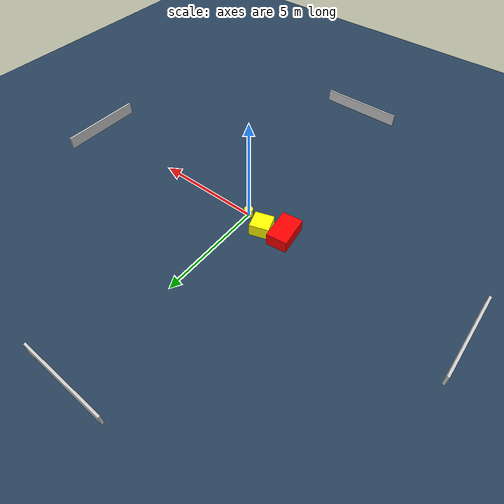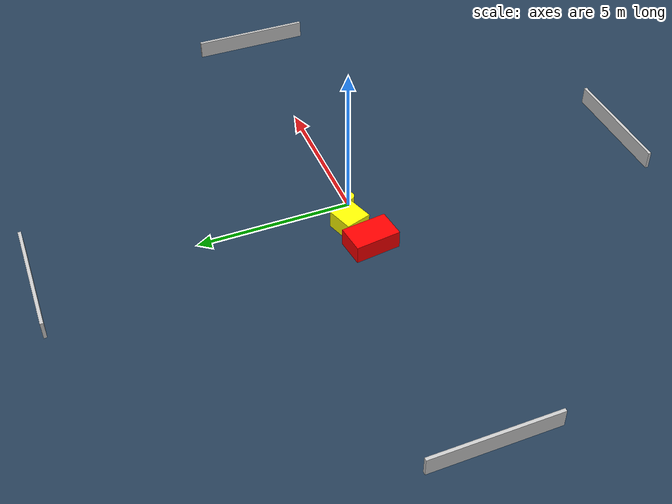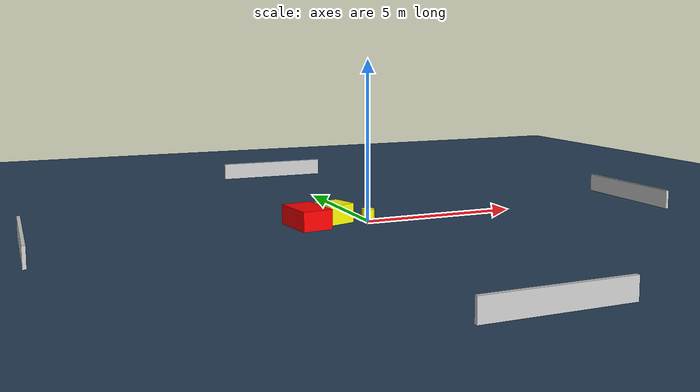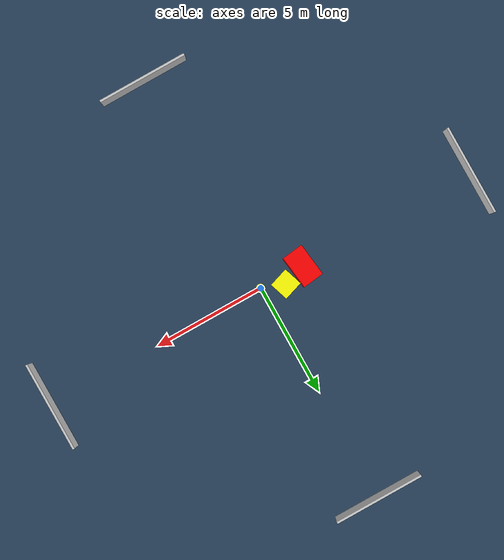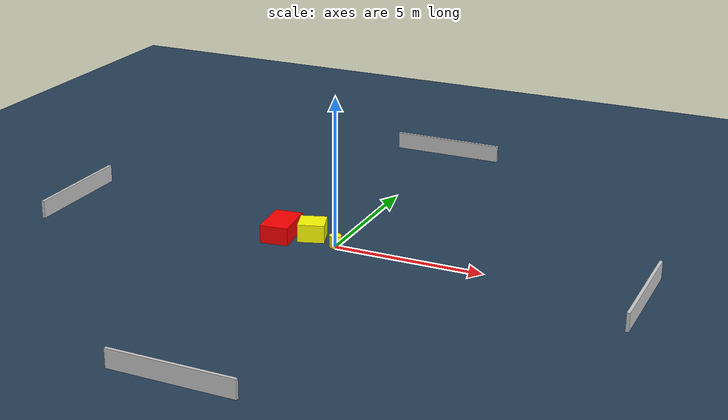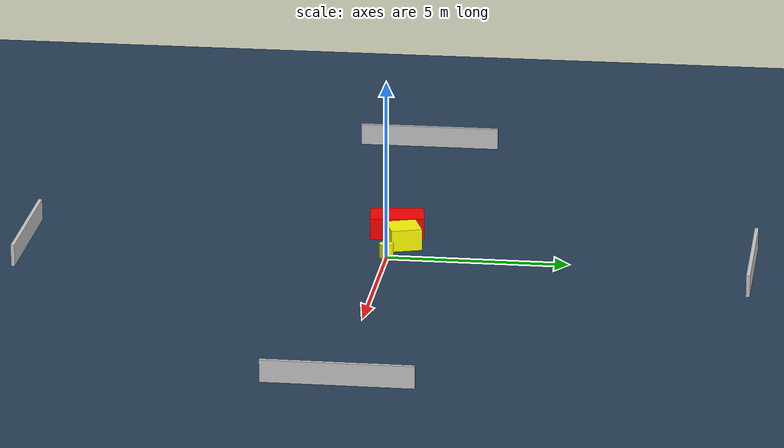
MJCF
<?xml version="1.0" ?>
<mujoco model="generated_environment">
  <option timestep="0.01" integrator="RK4" cone="elliptic"/>
  <default>
    <geom density="1"/>
  </default>
  <asset>
    <texture builtin="gradient" height="3072" name="skybox" rgb1="0.3 0.5 0.7" rgb2="0 0 0" type="skybox" width="512"/>
    <texture builtin="checker" height="300" name="groundplane" rgb1="0.2 0.3 0.4" rgb2="0.1 0.2 0.3" type="2d" width="300"/>
    <material name="groundplane" reflectance="0.2" texrepeat="5 5" texture="groundplane"/>
  </asset>
  <worldbody>
    <light dir="0 0 -1" directional="true" pos="0 0 1.5"/>
    <geom condim="3" friction="0.5 0.005 0.001" material="groundplane" name="floor" pos="0 0 0" size="0 0 0.05" type="plane"/>
    <body name="walls">
      <geom name="wall_1" condim="4" pos="-10.0 0.0 0.3" rgba="0.800000011920929 0.800000011920929 0.800000011920929 1.0" size="0.05 2.0 0.3" type="box"/>
      <geom name="wall_2" condim="4" pos="10.0 0.0 0.3" rgba="0.800000011920929 0.800000011920929 0.800000011920929 1.0" size="0.05 2.0 0.3" type="box"/>
      <geom name="wall_3" condim="4" pos="0.0 -10.0 0.3" rgba="0.800000011920929 0.800000011920929 0.800000011920929 1.0" size="2.0 0.05 0.3" type="box"/>
      <geom name="wall_4" condim="4" pos="0.0 10.0 0.3" rgba="0.800000011920929 0.800000011920929 0.800000011920929 1.0" size="2.0 0.05 0.3" type="box"/>
    </body>
    <body name="robot">
      <joint name="joint_x" type="slide" pos="0 0 0" axis="1 0 0"/>
      <joint name="joint_y" type="slide" pos="0 0 0" axis="0 1 0"/>
      <geom name="robot" type="cylinder" pos="0.0 0.0 0.2" size="0.2 0.2 0.0" mass="5.0" friction="1.0 0.005 0.0001" condim="4" rgba="1.0 1.0 0.0 1.0"/>
    </body>
    <body name="obstacle_1_movable">
      <geom name="obstacle_1_movable" condim="4" pos="-1.0001145606565358 0.3511345158095747 0.3" euler="0 0 198.20767943645956" friction="0.0 0.005 0.001" rgba="1.0 1.0 0.0 1.0" size="0.4407142595198879 0.4263187101475199 0.3" type="box" mass="0.1"/>
      <joint type="free"/>
    </body>
    <body name="obstacle_2_static">
      <geom name="obstacle_2_static" condim="4" pos="-1.9777984188160496 0.047027819113670766 0.3" euler="0 0 187.15606971968612" friction="0.0 0.005 0.001" rgba="1.0 0.0 0.0 1.0" size="0.4726014543064145 0.7420026765733083 0.3" type="box"/>
    </body>
  </worldbody>
  <actuator>
    <motor name="actuator_x" joint="joint_x" gear="1" ctrlrange="-1 1"/>
    <motor name="actuator_y" joint="joint_y" gear="1" ctrlrange="-1 1"/>
  </actuator>
</mujoco>
